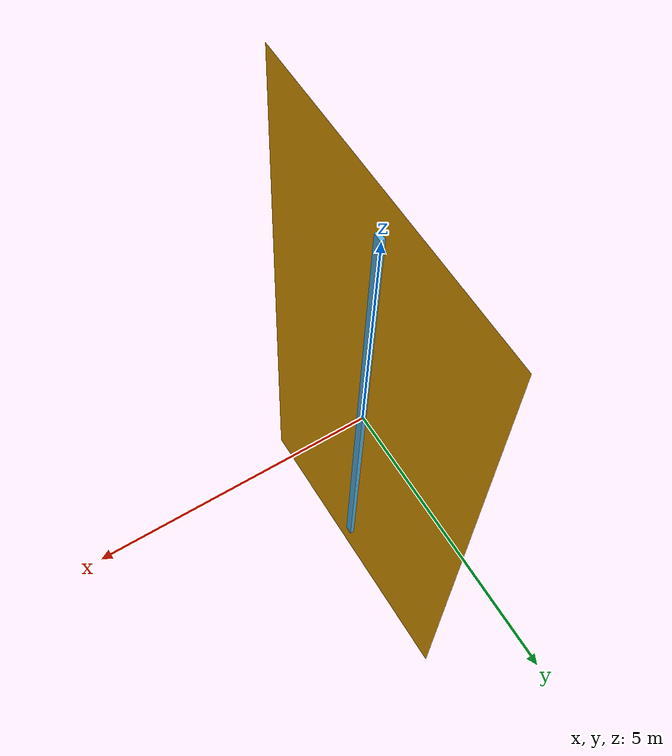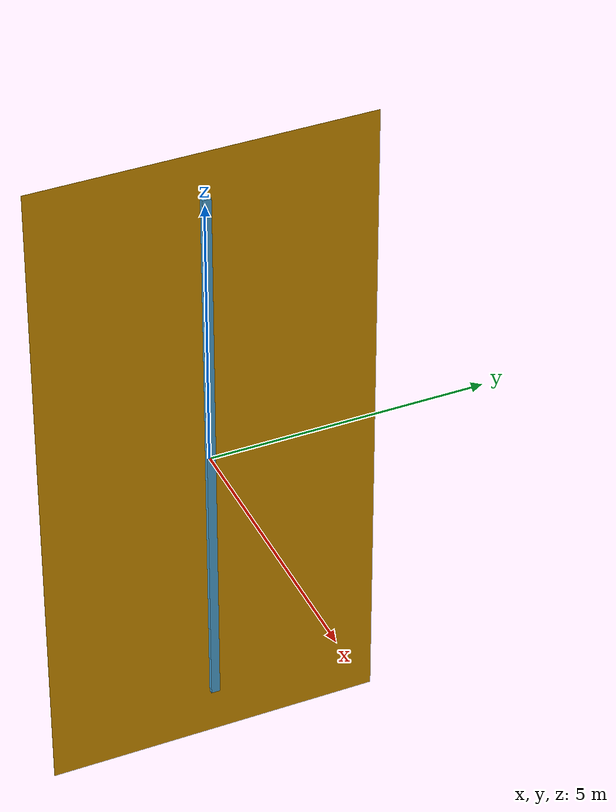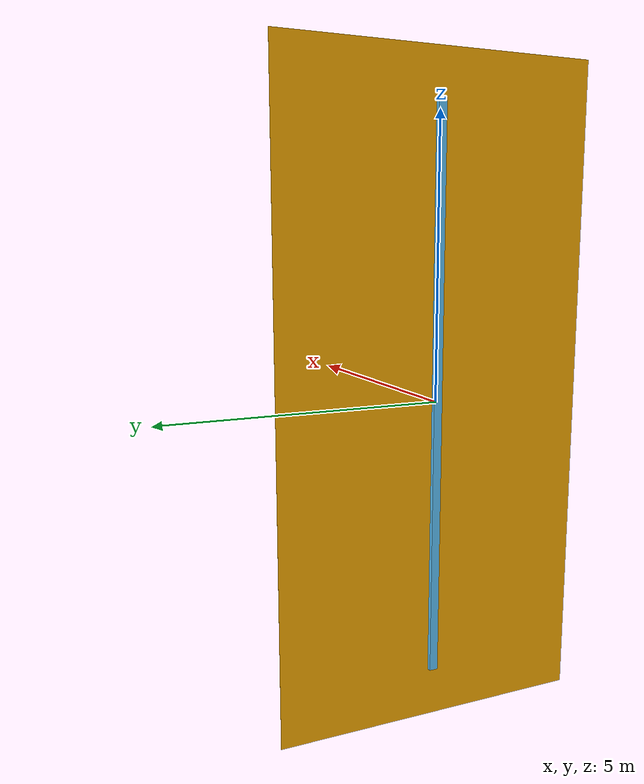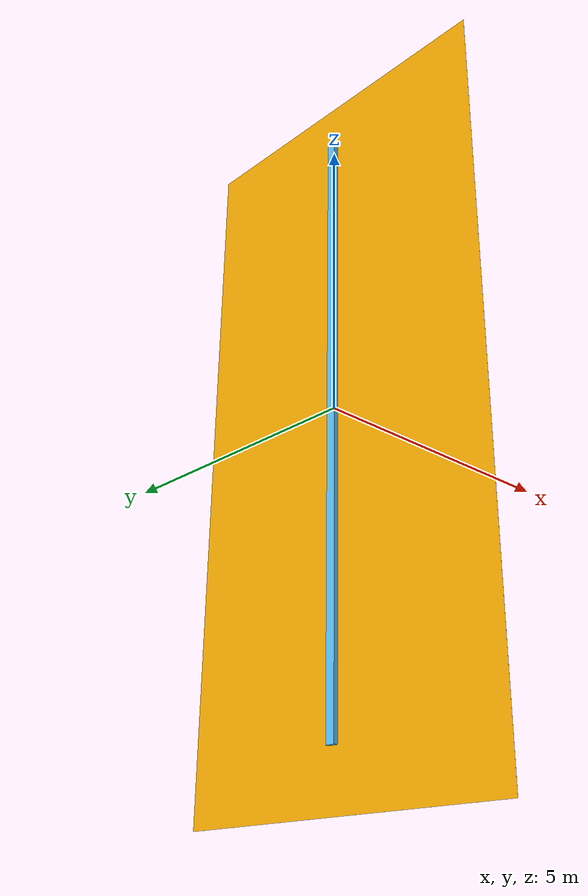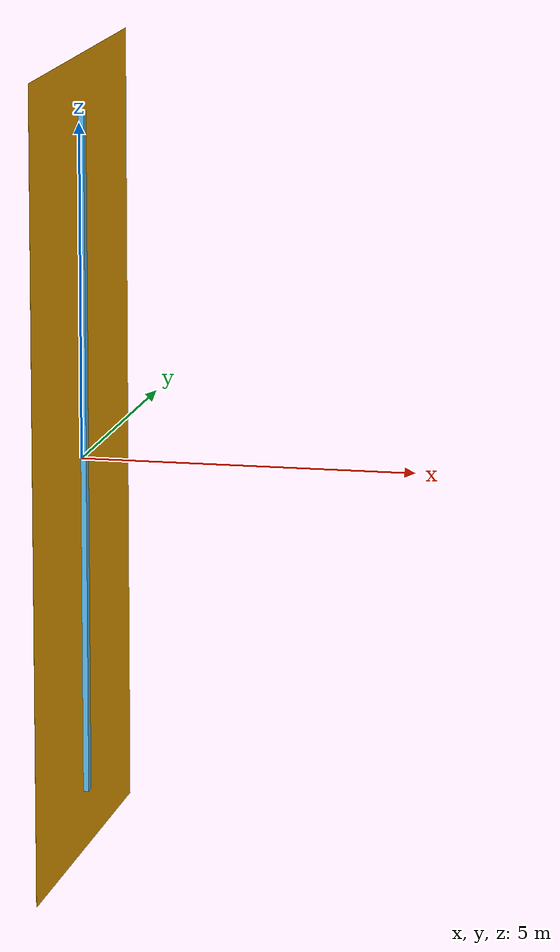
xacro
<?xml version="1.0"?>
<robot xmlns:xacro="http://www.ros.org/wiki/xacro" name="kbot">
  <xacro:property name="base_width" value="0.16"/>
  <xacro:property name="base_len" value="0.16"/>
  <xacro:property name="wheel_radius" value="0.035"/>
  <xacro:property name="base_wheel_gap" value="0.007"/>
  <xacro:property name="wheel_separation" value="0.15"/>
  <xacro:property name="wheel_joint_offset" value="0.02"/>

  <xacro:macro name="box_inertia" params="m w h d">
    <inertial>
      <mass value="${m}"/>
      <inertia ixx="${m / 12.0 * (d*d + h*h)}" ixy="0.0" ixz="0.0" iyy="${m / 12.0 * (w*w + h*h)}" iyz="0.0" izz="${m / 12.0 * (w*w + d*d)}"/>
    </inertial>
  </xacro:macro>
  <link name="base_footprint">
    <xacro:box_inertia m="20" w="0.001" h="0.001" d="0.001"/>
    <visual>
        <origin xyz="0 0 0" rpy="0 0 0" />
        <geometry>
            <box size="0.001 6.0 12.0" />
        </geometry>
    </visual>
  </link>
  <link name="base_link">
    <xacro:box_inertia m="10" w="${base_len}" h="${base_width}" d="0.01"/>
    <visual>
      <geometry>
        <box size="${base_len} ${base_width} 10.25"/>
      </geometry>
    </visual>
    <collision>
      <geometry>
        <box size="${base_len} ${base_width} 0.01"/>
      </geometry>
    </collision>
  </link>
  <joint name="base_link_joint" type="fixed">
    <origin xyz="0 0 ${wheel_radius + 0.005}" rpy="0 0 0" />
    <parent link="base_footprint"/>
    <child link="base_link" />
  </joint>

</robot>
